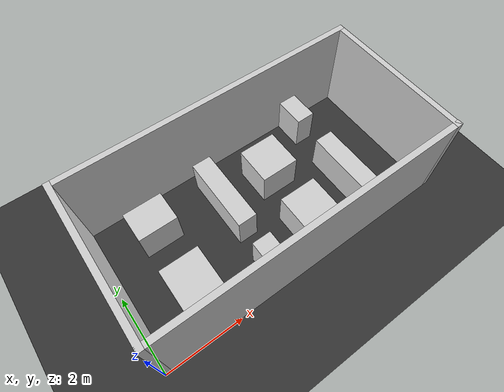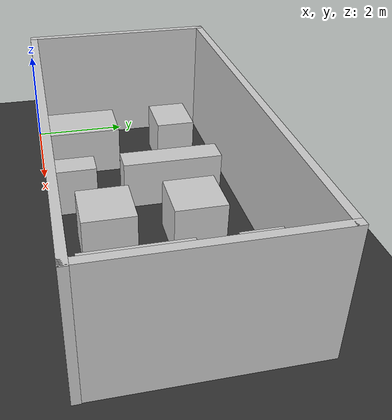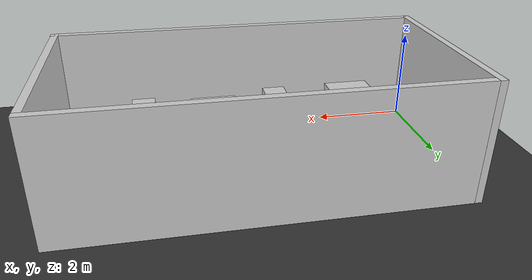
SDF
<?xml version='1.0'?>
<sdf version='1.9'>
  <world name='default'>
    <physics name="1ms" type="dart">
      <max_contacts>100</max_contacts>
      <contact_surface_layer>true</contact_surface_layer>
    </physics>
      <plugin
          filename="libignition-gazebo-physics-system.so"
          name="ignition::gazebo::systems::Physics">
      </plugin>
      <plugin
          filename="libignition-gazebo-user-commands-system.so"
          name="ignition::gazebo::systems::UserCommands">
      </plugin>
      <plugin
          filename="libignition-gazebo-scene-broadcaster-system.so"
          name="ignition::gazebo::systems::SceneBroadcaster">
      </plugin>

      <gui fullscreen="0">

          <!-- 3D scene -->
          <plugin filename="GzScene3D" name="3D View">
              <ignition-gui>
              <title>3D View</title>
              <property type="bool" key="showTitleBar">false</property>
              <property type="string" key="state">docked</property>
              </ignition-gui>

              <engine>ogre2</engine>
              <scene>scene</scene>
              <ambient_light>0.4 0.4 0.4</ambient_light>
              <background_color>0.8 0.8 0.8</background_color>
          </plugin>

          <!-- World control -->
          <plugin filename="WorldControl" name="World control">
              <ignition-gui>
              <title>World control</title>
              <property type="bool" key="showTitleBar">false</property>
              <property type="bool" key="resizable">false</property>
              <property type="double" key="height">72</property>
              <property type="double" key="width">121</property>
              <property type="double" key="z">1</property>

              <property type="string" key="state">floating</property>
              <anchors target="3D View">
                  <line own="left" target="left"/>
                  <line own="bottom" target="bottom"/>
              </anchors>
              </ignition-gui>

              <play_pause>true</play_pause>
              <step>true</step>
              <start_paused>true</start_paused>
              <service>/world/car_world/control</service>
              <stats_topic>/world/car_world/stats</stats_topic>
          </plugin>

          <!-- World statistics -->
          <plugin filename="WorldStats" name="World stats">
              <ignition-gui>
              <title>World stats</title>
              <property type="bool" key="showTitleBar">false</property>
              <property type="bool" key="resizable">false</property>
              <property type="double" key="height">110</property>
              <property type="double" key="width">290</property>
              <property type="double" key="z">1</property>

              <property type="string" key="state">floating</property>
              <anchors target="3D View">
                  <line own="right" target="right"/>
                  <line own="bottom" target="bottom"/>
              </anchors>
              </ignition-gui>

              <sim_time>true</sim_time>
              <real_time>true</real_time>
              <real_time_factor>true</real_time_factor>
              <iterations>true</iterations>
              <topic>/world/car_world/stats</topic>

          </plugin>

          <!-- Entity tree -->
          <plugin filename="EntityTree" name="Entity tree">
          </plugin>

        </gui>

        <light type="directional" name="sun">
            <cast_shadows>false</cast_shadows>
            <pose>0 0 10 0 0 0</pose>
            <diffuse>0.8 0.8 0.8 1</diffuse>
            <specular>0.2 0.2 0.2 1</specular>
            <attenuation>
                <range>1000</range>
                <constant>0.9</constant>
                <linear>0.01</linear>
                <quadratic>0.001</quadratic>
            </attenuation>
            <direction>-0.5 0.1 -0.9</direction>
        </light>

    <model name='ground_plane'>
      <static>1</static>
      <link name='link'>
        <collision name='collision'>
          <geometry>
            <plane>
              <normal>0 0 1</normal>
              <size>100 100</size>
            </plane>
          </geometry>
          <surface>
            <contact>
              <collide_bitmask>65535</collide_bitmask>
              <ode/>
            </contact>
            <friction>
              <ode>
                <mu>1.0</mu>
                <mu2>1.0</mu2>
              </ode>
            </friction>
          </surface>
          <max_contacts>20</max_contacts>
        </collision>
         <visual name="visual">
          <geometry>
            <plane>
              <normal>0 0 1</normal>
              <size>100 100</size>
            </plane>
          </geometry>
          <material>
            <ambient>0.2 0.2 0.2 1</ambient>
            <diffuse>0.2 0.2 0.2 1</diffuse>
            <specular>0.1 0.1 0.1 1</specular>
          </material>
        </visual>
        <self_collide>0</self_collide>
        <enable_wind>0</enable_wind>
        <kinematic>0</kinematic>
      </link>
    </model>
    <gravity>0 0 -9.8</gravity>
    <magnetic_field>6e-06 2.3e-05 -4.2e-05</magnetic_field>
    <atmosphere type='adiabatic'/>
    <physics type='ode'>
      <max_step_size>0.001</max_step_size>
      <real_time_factor>1</real_time_factor>
      <real_time_update_rate>1000</real_time_update_rate>
    </physics>
        <audio>
      <device>default</device>
    </audio>
    <wind/>
    <spherical_coordinates>
      <surface_model>EARTH_WGS84</surface_model>
      <latitude_deg>0</latitude_deg>
      <longitude_deg>0</longitude_deg>
      <elevation>0</elevation>
      <heading_deg>0</heading_deg>
    </spherical_coordinates>
    <model name='WALL_1'>
      <static>true</static>
      <pose>0.084 2.0111 1.25 0 0 1.5708</pose>
      <link name='link'>
        <inertial>
          <mass>20</mass>
          <inertia>
            <ixx>0.166667</ixx>
            <ixy>0</ixy>
            <ixz>0</ixz>
            <iyy>0.166667</iyy>
            <iyz>0</iyz>
            <izz>0.166667</izz>
          </inertia>
          <pose>0 0 0 0 0 0</pose>
        </inertial>
        <gravity>1</gravity>
        <self_collide>0</self_collide>
        <kinematic>0</kinematic>
        <enable_wind>0</enable_wind>
        <visual name='visual'>
          <pose>0 0 0 0 0 0</pose>
          <geometry>
            <box>
              <size>4 0.15 2.5</size>
            </box>
          </geometry>
          <material>
            <ambient>0.9 0.9 0.9 1</ambient>
            <diffuse>0.8 0.8 0.8 1</diffuse>
            <specular>0.5 0.5 0.5 1</specular>
            <emissive>0 0 0 0</emissive>
          </material>
          <transparency>0</transparency>
          <cast_shadows>1</cast_shadows>
        </visual>
        <collision name='collision'>
          <laser_retro>0</laser_retro>
          <max_contacts>10</max_contacts>
          <pose>0 0 0 0 0 0</pose>
          <geometry>
            <box>
              <size>4 0.15 2.5</size>
            </box>
          </geometry>
        </collision>
      </link>
    </model>

    <model name='WALL_2'>
      <static>true</static>
      <pose>4.009 3.936 1.25 0 0 0</pose>
      <link name='link'>
        <inertial>
          <mass>20</mass>
          <inertia>
            <ixx>0.166667</ixx>
            <ixy>0</ixy>
            <ixz>0</ixz>
            <iyy>0.166667</iyy>
            <iyz>0</iyz>
            <izz>0.166667</izz>
          </inertia>
          <pose>0 0 0 0 0 0</pose>
        </inertial>
        <gravity>1</gravity>
        <self_collide>0</self_collide>
        <kinematic>0</kinematic>
        <enable_wind>0</enable_wind>
        <visual name='visual'>
          <pose>0 0 0 0 0 0</pose>
          <geometry>
            <box>
              <size>8 0.15 2.5</size>
            </box>
          </geometry>
          <material>
            <ambient>0.9 0.9 0.9 1</ambient>
            <diffuse>0.8 0.8 0.8 1</diffuse>
            <specular>0.5 0.5 0.5 1</specular>
            <emissive>0 0 0 0</emissive>
          </material>
          <transparency>0</transparency>
          <cast_shadows>1</cast_shadows>
        </visual>
        <collision name='collision'>
          <laser_retro>0</laser_retro>
          <max_contacts>10</max_contacts>
          <pose>0 0 0 0 0 0</pose>
          <geometry>
            <box>
              <size>8 0.15 2.5</size>
            </box>
          </geometry>
        </collision>
      </link>
    </model>

    <model name='WALL_3'>
      <static>true</static>
      <pose>7.934 2.011 1.25 0 0 -1.5708</pose>
      <link name='link'>
        <inertial>
          <mass>20</mass>
          <inertia>
            <ixx>0.166667</ixx>
            <ixy>0</ixy>
            <ixz>0</ixz>
            <iyy>0.166667</iyy>
            <iyz>0</iyz>
            <izz>0.166667</izz>
          </inertia>
          <pose>0 0 0 0 0 0</pose>
        </inertial>
        <gravity>1</gravity>
        <self_collide>0</self_collide>
        <kinematic>0</kinematic>
        <enable_wind>0</enable_wind>
        <visual name='visual'>
          <pose>0 0 0 0 0 0</pose>
          <geometry>
            <box>
              <size>4 0.15 2.5</size>
            </box>
          </geometry>
          <material>
            <ambient>0.9 0.9 0.9 1</ambient>
            <diffuse>0.8 0.8 0.8 1</diffuse>
            <specular>0.5 0.5 0.5 1</specular>
            <emissive>0 0 0 0</emissive>
          </material>
          <transparency>0</transparency>
          <cast_shadows>1</cast_shadows>
        </visual>
        <collision name='collision'>
          <laser_retro>0</laser_retro>
          <max_contacts>10</max_contacts>
          <pose>0 0 0 0 0 0</pose>
          <geometry>
            <box>
              <size>4 0.15 2.5</size>
            </box>
          </geometry>
        </collision>
      </link>
    </model>

    <model name='WALL_4'>
      <static>true</static>
      <pose>4.0215 0.0861 1.25 0 0 3.14159</pose>
      <link name='link'>
        <inertial>
          <mass>20</mass>
          <inertia>
            <ixx>0.166667</ixx>
            <ixy>0</ixy>
            <ixz>0</ixz>
            <iyy>0.166667</iyy>
            <iyz>0</iyz>
            <izz>0.166667</izz>
          </inertia>
          <pose>0 0 0 0 0 0</pose>
        </inertial>
        <gravity>1</gravity>
        <self_collide>0</self_collide>
        <kinematic>0</kinematic>
        <enable_wind>0</enable_wind>
        <visual name='visual'>
          <pose>0 0 0 0 0 0</pose>
          <geometry>
            <box>
              <size>8 0.15 2.5</size>
            </box>
          </geometry>
          <material>
            <ambient>0.9 0.9 0.9 1</ambient>
            <diffuse>0.8 0.8 0.8 1</diffuse>
            <specular>0.5 0.5 0.5 1</specular>
            <emissive>0 0 0 0</emissive>
          </material>
          <transparency>0</transparency>
          <cast_shadows>1</cast_shadows>
        </visual>
        <collision name='collision'>
          <laser_retro>0</laser_retro>
          <max_contacts>10</max_contacts>
          <pose>0 0 0 0 0 0</pose>
          <geometry>
            <box>
              <size>8 0.15 2.5</size>
            </box>
          </geometry>
        </collision>
      </link>
    </model>
    <model name='MAZE_0_0'>
      <static>true</static>
      <pose>1.5 2.944 0.5 0 0 0</pose>
      <link name='link'>
        <inertial>
          <mass>1</mass>
          <inertia>
            <ixx>0.166667</ixx>
            <ixy>0</ixy>
            <ixz>0</ixz>
            <iyy>0.166667</iyy>
            <iyz>0</iyz>
            <izz>0.166667</izz>
          </inertia>
          <pose>0 0 0 0 0 0</pose>
        </inertial>
        <gravity>1</gravity>
        <self_collide>0</self_collide>
        <kinematic>0</kinematic>
        <enable_wind>0</enable_wind>
        <visual name='visual'>
          <pose>0 0 0 0 0 0</pose>
          <geometry>
            <box>
              <size>1 0.8 1</size>
            </box>
          </geometry>
          <material>
            <ambient>0.9 0.9 0.9 1</ambient>
            <diffuse>0.8 0.8 0.8 1</diffuse>
            <specular>0.5 0.5 0.5 1</specular>
            <emissive>0 0 0 0</emissive>
          </material>
          <transparency>0</transparency>
          <cast_shadows>1</cast_shadows>
        </visual>
        <collision name='collision'>
          <laser_retro>0</laser_retro>
          <max_contacts>10</max_contacts>
          <pose>0 0 0 0 0 0</pose>
          <geometry>
            <box>
              <size>1 0.8 1</size>
            </box>
          </geometry>
        </collision>
      </link>
    </model>

    <model name='MAZE_0_1'>
      <static>true</static>
      <pose>1.5 0.927 0.5 0 0 0</pose>
      <link name='link'>
        <inertial>
          <mass>20</mass>
          <inertia>
            <ixx>0.166667</ixx>
            <ixy>0</ixy>
            <ixz>0</ixz>
            <iyy>0.166667</iyy>
            <iyz>0</iyz>
            <izz>0.166667</izz>
          </inertia>
          <pose>0 0 0 0 0 0</pose>
        </inertial>
        <gravity>1</gravity>
        <self_collide>0</self_collide>
        <kinematic>0</kinematic>
        <enable_wind>0</enable_wind>
        <visual name='visual'>
          <pose>0 0 0 0 0 0</pose>
          <geometry>
            <box>
              <size>1 1.5 1</size>
            </box>
          </geometry>
          <material>
            <ambient>0.9 0.9 0.9 1</ambient>
            <diffuse>0.8 0.8 0.8 1</diffuse>
            <specular>0.5 0.5 0.5 1</specular>
            <emissive>0 0 0 0</emissive>
          </material>
          <transparency>0</transparency>
          <cast_shadows>1</cast_shadows>
        </visual>
        <collision name='collision'>
          <laser_retro>0</laser_retro>
          <max_contacts>10</max_contacts>
          <pose>0 0 0 0 0 0</pose>
          <geometry>
            <box>
              <size>1 1.5 1</size>
            </box>
          </geometry>
        </collision>
      </link>
    </model>

    <model name='MAZE_1_0'>
      <static>true</static>
      <pose>3.265 2.531 0.5 0 0 0</pose>
      <link name='link'>
        <inertial>
          <mass>20</mass>
          <pose>0 0 0 0 0 0</pose>
        </inertial>
        <gravity>1</gravity>
        <self_collide>0</self_collide>
        <kinematic>0</kinematic>
        <enable_wind>0</enable_wind>
        <visual name='visual'>
          <pose>0 0 0 0 0 0</pose>
          <geometry>
            <box>
              <size>0.5 2 1</size>
            </box>
          </geometry>
          <material>
            <ambient>0.9 0.9 0.9 1</ambient>
            <diffuse>0.8 0.8 0.8 1</diffuse>
            <specular>0.5 0.5 0.5 1</specular>
            <emissive>0 0 0 0</emissive>
          </material>
          <transparency>0</transparency>
          <cast_shadows>1</cast_shadows>
        </visual>
        <collision name='collision'>
          <laser_retro>0</laser_retro>
          <max_contacts>10</max_contacts>
          <pose>0 0 0 0 0 0</pose>
          <geometry>
            <box>
              <size>0.5 2 1</size>
            </box>
          </geometry>
        </collision>
      </link>
    </model>

    <model name='MAZE_1_1'>
      <static>true</static>
      <pose>3.258 0.598 0.5 0 0 0</pose>
      <link name='link'>
        <inertial>
          <mass>20</mass>
          <inertia>
            <ixx>0.166667</ixx>
            <ixy>0</ixy>
            <ixz>0</ixz>
            <iyy>0.166667</iyy>
            <iyz>0</iyz>
            <izz>0.166667</izz>
          </inertia>
          <pose>0 0 0 0 0 0</pose>
        </inertial>
        <gravity>1</gravity>
        <self_collide>0</self_collide>
        <kinematic>0</kinematic>
        <enable_wind>0</enable_wind>
        <visual name='visual'>
          <pose>0 0 0 0 0 0</pose>
          <geometry>
            <box>
              <size>0.5 0.8 1</size>
            </box>
          </geometry>
          <material>
            <ambient>0.9 0.9 0.9 1</ambient>
            <diffuse>0.8 0.8 0.8 1</diffuse>
            <specular>0.5 0.5 0.5 1</specular>
            <emissive>0 0 0 0</emissive>
          </material>
          <transparency>0</transparency>
          <cast_shadows>1</cast_shadows>
        </visual>
        <collision name='collision'>
          <laser_retro>0</laser_retro>
          <max_contacts>10</max_contacts>
          <pose>0 0 0 0 0 0</pose>
          <geometry>
            <box>
              <size>0.5 0.8 1</size>
            </box>
          </geometry>
        </collision>
      </link>
    </model>

    <model name='MAZE_2_0'>
      <static>true</static>
      <pose>6.229 1.323 0.5 0 0 0</pose>
      <link name='link'>
        <inertial>
          <mass>20</mass>
          <inertia>
            <ixx>0.166667</ixx>
            <ixy>0</ixy>
            <ixz>0</ixz>
            <iyy>0.166667</iyy>
            <iyz>0</iyz>
            <izz>0.166667</izz>
          </inertia>
          <pose>0 0 0 0 0 0</pose>
        </inertial>
        <gravity>1</gravity>
        <self_collide>0</self_collide>
        <kinematic>0</kinematic>
        <enable_wind>0</enable_wind>
        <visual name='visual'>
          <pose>0 0 0 0 0 0</pose>
          <geometry>
            <box>
              <size>0.5 2 1</size>
            </box>
          </geometry>
          <material>
            <ambient>0.9 0.9 0.9 1</ambient>
            <diffuse>0.8 0.8 0.8 1</diffuse>
            <specular>0.5 0.5 0.5 1</specular>
            <emissive>0 0 0 0</emissive>
          </material>
          <transparency>0</transparency>
          <cast_shadows>1</cast_shadows>
        </visual>
        <collision name='collision'>
          <laser_retro>0</laser_retro>
          <max_contacts>10</max_contacts>
          <pose>0 0 0 0 0 0</pose>
          <geometry>
            <box>
              <size>0.5 2 1</size>
            </box>
          </geometry>
        </collision>
      </link>
    </model>

    <model name='MAZE_2_1'>
      <static>true</static>
      <pose>6.240 3.453 0.5 0 0 0</pose>
      <link name='link'>
        <inertial>
          <mass>20</mass>
          <inertia>
            <ixx>0.166667</ixx>
            <ixy>0</ixy>
            <ixz>0</ixz>
            <iyy>0.166667</iyy>
            <iyz>0</iyz>
            <izz>0.166667</izz>
          </inertia>
          <pose>0 0 0 0 0 0</pose>
        </inertial>
        <gravity>1</gravity>
        <self_collide>0</self_collide>
        <kinematic>0</kinematic>
        <enable_wind>0</enable_wind>
        <visual name='visual'>
          <pose>0 0 0 0 0 0</pose>
          <geometry>
            <box>
              <size>0.5 0.8 1</size>
            </box>
          </geometry>
          <material>
            <ambient>0.9 0.9 0.9 1</ambient>
            <diffuse>0.8 0.8 0.8 1</diffuse>
            <specular>0.5 0.5 0.5 1</specular>
            <emissive>0 0 0 0</emissive>
          </material>
          <transparency>0</transparency>
          <cast_shadows>1</cast_shadows>
        </visual>
        <collision name='collision'>
          <laser_retro>0</laser_retro>
          <max_contacts>10</max_contacts>
          <pose>0 0 0 0 0 0</pose>
          <geometry>
            <box>
              <size>0.5 0.8 1</size>
            </box>
          </geometry>
        </collision>
      </link>
    </model>

    <model name='MAZE_3_0'>
      <static>true</static>
      <pose>4.702 1.0 0.5 0 0 0</pose>
      <link name='link'>
        <inertial>
          <mass>20</mass>
          <inertia>
            <ixx>0.166667</ixx>
            <ixy>0</ixy>
            <ixz>0</ixz>
            <iyy>0.166667</iyy>
            <iyz>0</iyz>
            <izz>0.166667</izz>
          </inertia>
          <pose>0 0 0 0 0 0</pose>
        </inertial>
        <gravity>1</gravity>
        <self_collide>0</self_collide>
        <kinematic>0</kinematic>
        <enable_wind>0</enable_wind>
        <visual name='visual'>
          <pose>0 0 0 0 0 0</pose>
          <geometry>
            <box>
              <size>1 1 1</size>
            </box>
          </geometry>
          <material>
            <ambient>0.9 0.9 0.9 1</ambient>
            <diffuse>0.8 0.8 0.8 1</diffuse>
            <specular>0.5 0.5 0.5 1</specular>
            <emissive>0 0 0 0</emissive>
          </material>
          <transparency>0</transparency>
          <cast_shadows>1</cast_shadows>
        </visual>
        <collision name='collision'>
          <laser_retro>0</laser_retro>
          <max_contacts>10</max_contacts>
          <pose>0 0 0 0 0 0</pose>
          <geometry>
            <box>
              <size>1 1 1</size>
            </box>
          </geometry>
        </collision>
      </link>
    </model>

    <model name='MAZE_3_1'>
      <static>true</static>
      <pose>4.702 2.653 0.5 0 0 0</pose>
      <link name='link'>
        <inertial>
          <mass>20</mass>
          <inertia>
            <ixx>0.166667</ixx>
            <ixy>0</ixy>
            <ixz>0</ixz>
            <iyy>0.166667</iyy>
            <iyz>0</iyz>
            <izz>0.166667</izz>
          </inertia>
          <pose>0 0 0 0 0 0</pose>
        </inertial>
        <gravity>1</gravity>
        <self_collide>0</self_collide>
        <kinematic>0</kinematic>
        <enable_wind>0</enable_wind>
        <visual name='visual'>
          <pose>0 0 0 0 0 0</pose>
          <geometry>
            <box>
              <size>1 1 1</size>
            </box>
          </geometry>
          <material>
            <ambient>0.9 0.9 0.9 1</ambient>
            <diffuse>0.8 0.8 0.8 1</diffuse>
            <specular>0.5 0.5 0.5 1</specular>
            <emissive>0 0 0 0</emissive>
          </material>
          <transparency>0</transparency>
          <cast_shadows>1</cast_shadows>
        </visual>
        <collision name='collision'>
          <laser_retro>0</laser_retro>
          <max_contacts>10</max_contacts>
          <pose>0 0 0 0 0 0</pose>
          <geometry>
            <box>
              <size>1 1 1</size>
            </box>
          </geometry>
        </collision>
      </link>
    </model>

  </world>
</sdf>
